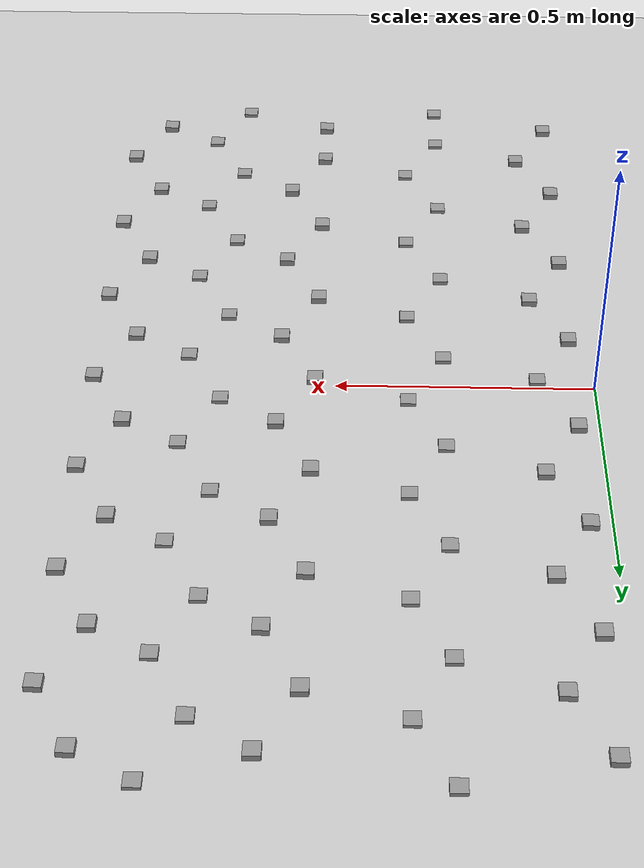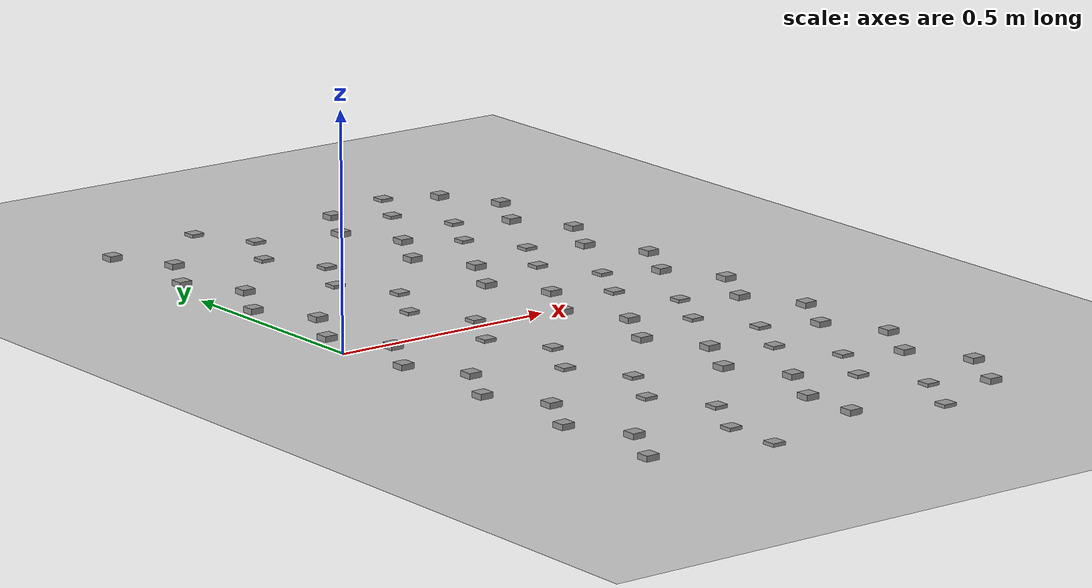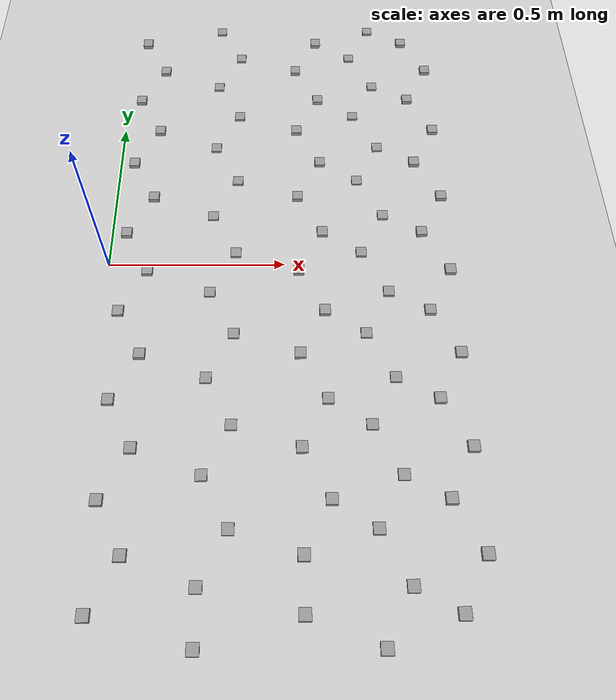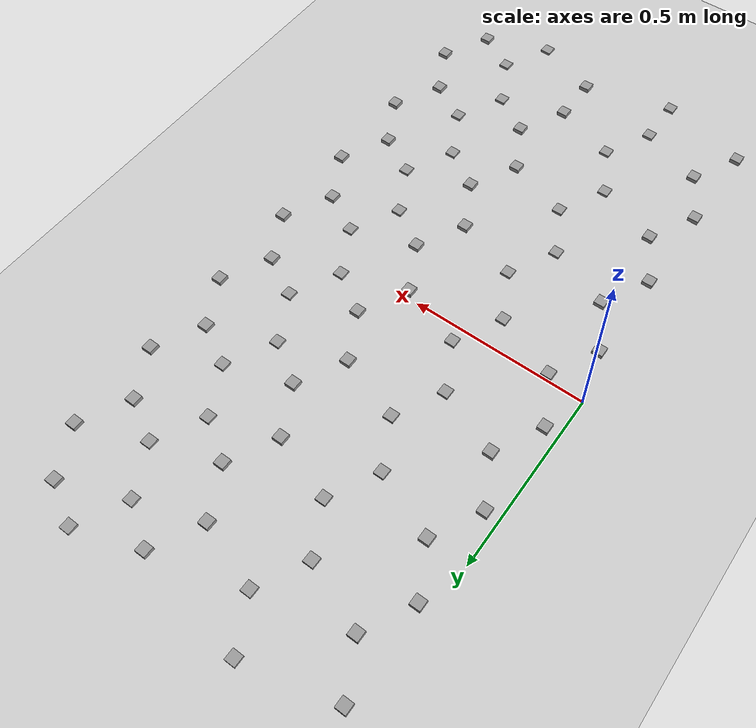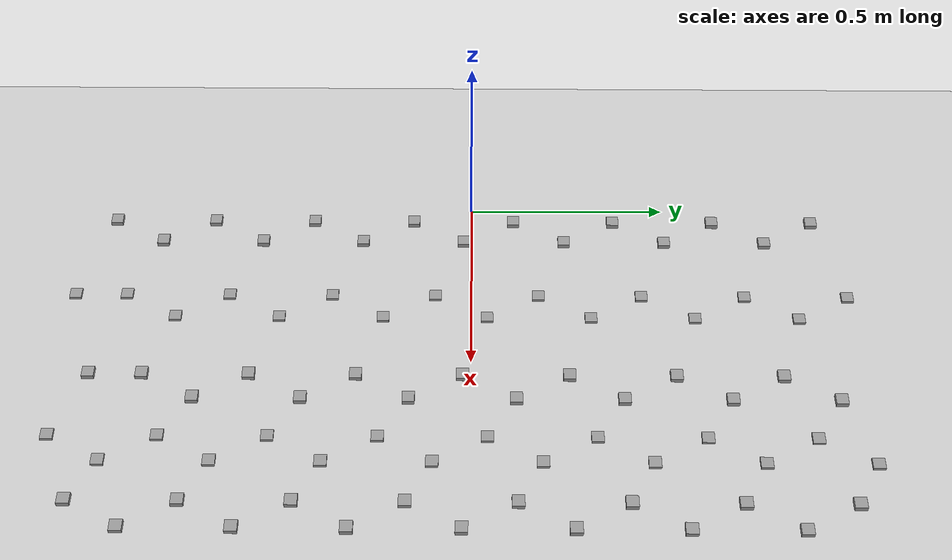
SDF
<sdf version="1.5">
 <world name="default">
  <model name="unit_box_78">
   <pose>0.0400000000000001 -0.93 0 0 0 0</pose>
   <link name="link">
    <inertial>
     <mass>1</mass>
     <inertia><ixx>0</ixx><ixy>0</ixy><ixz>0</ixz><iyy>0</iyy><iyz>0</iyz><izz>0</izz></inertia>
    </inertial>
    <collision name="collision"><geometry><box><size>0.03 0.03 0.02</size></box></geometry></collision>
    <visual name="visual">
     <geometry><box><size>0.03 0.03 0.02</size></box></geometry>
     <material>
      <script><name>Gazebo/Grey</name><uri>file://media/materials/scripts/gazebo.material</uri></script>
     </material>
    </visual>
   </link>
  </model>
  <model name="unit_box_79">
   <pose>0.11 -0.8 0 0 0 0</pose>
   <link name="link">
    <inertial>
     <mass>1</mass>
     <inertia><ixx>0</ixx><ixy>0</ixy><ixz>0</ixz><iyy>0</iyy><iyz>0</iyz><izz>0</izz></inertia>
    </inertial>
    <collision name="collision"><geometry><box><size>0.03 0.03 0.02</size></box></geometry></collision>
    <visual name="visual">
     <geometry><box><size>0.03 0.03 0.02</size></box></geometry>
     <material>
      <script><name>Gazebo/Grey</name><uri>file://media/materials/scripts/gazebo.material</uri></script>
     </material>
    </visual>
   </link>
  </model>
  <model name="unit_box_80">
   <pose>0.0400000000000001 -0.67 0 0 0 0</pose>
   <link name="link">
    <inertial>
     <mass>1</mass>
     <inertia><ixx>0</ixx><ixy>0</ixy><ixz>0</ixz><iyy>0</iyy><iyz>0</iyz><izz>0</izz></inertia>
    </inertial>
    <collision name="collision"><geometry><box><size>0.03 0.03 0.02</size></box></geometry></collision>
    <visual name="visual">
     <geometry><box><size>0.03 0.03 0.02</size></box></geometry>
     <material>
      <script><name>Gazebo/Grey</name><uri>file://media/materials/scripts/gazebo.material</uri></script>
     </material>
    </visual>
   </link>
  </model>
  <model name="unit_box_81">
   <pose>0.11 -0.54 0 0 0 0</pose>
   <link name="link">
    <inertial>
     <mass>1</mass>
     <inertia><ixx>0</ixx><ixy>0</ixy><ixz>0</ixz><iyy>0</iyy><iyz>0</iyz><izz>0</izz></inertia>
    </inertial>
    <collision name="collision"><geometry><box><size>0.03 0.03 0.02</size></box></geometry></collision>
    <visual name="visual">
     <geometry><box><size>0.03 0.03 0.02</size></box></geometry>
     <material>
      <script><name>Gazebo/Grey</name><uri>file://media/materials/scripts/gazebo.material</uri></script>
     </material>
    </visual>
   </link>
  </model>
  <model name="unit_box_82">
   <pose>0.0400000000000001 -0.41 0 0 0 0</pose>
   <link name="link">
    <inertial>
     <mass>1</mass>
     <inertia><ixx>0</ixx><ixy>0</ixy><ixz>0</ixz><iyy>0</iyy><iyz>0</iyz><izz>0</izz></inertia>
    </inertial>
    <collision name="collision"><geometry><box><size>0.03 0.03 0.02</size></box></geometry></collision>
    <visual name="visual">
     <geometry><box><size>0.03 0.03 0.02</size></box></geometry>
     <material>
      <script><name>Gazebo/Grey</name><uri>file://media/materials/scripts/gazebo.material</uri></script>
     </material>
    </visual>
   </link>
  </model>
  <model name="unit_box_83">
   <pose>0.11 -0.28 0 0 0 0</pose>
   <link name="link">
    <inertial>
     <mass>1</mass>
     <inertia><ixx>0</ixx><ixy>0</ixy><ixz>0</ixz><iyy>0</iyy><iyz>0</iyz><izz>0</izz></inertia>
    </inertial>
    <collision name="collision"><geometry><box><size>0.03 0.03 0.02</size></box></geometry></collision>
    <visual name="visual">
     <geometry><box><size>0.03 0.03 0.02</size></box></geometry>
     <material>
      <script><name>Gazebo/Grey</name><uri>file://media/materials/scripts/gazebo.material</uri></script>
     </material>
    </visual>
   </link>
  </model>
  <model name="unit_box_84">
   <pose>0.0400000000000001 -0.15 0 0 0 0</pose>
   <link name="link">
    <inertial>
     <mass>1</mass>
     <inertia><ixx>0</ixx><ixy>0</ixy><ixz>0</ixz><iyy>0</iyy><iyz>0</iyz><izz>0</izz></inertia>
    </inertial>
    <collision name="collision"><geometry><box><size>0.03 0.03 0.02</size></box></geometry></collision>
    <visual name="visual">
     <geometry><box><size>0.03 0.03 0.02</size></box></geometry>
     <material>
      <script><name>Gazebo/Grey</name><uri>file://media/materials/scripts/gazebo.material</uri></script>
     </material>
    </visual>
   </link>
  </model>
  <model name="unit_box_85">
   <pose>0.11 -0.02 0 0 0 0</pose>
   <link name="link">
    <inertial>
     <mass>1</mass>
     <inertia><ixx>0</ixx><ixy>0</ixy><ixz>0</ixz><iyy>0</iyy><iyz>0</iyz><izz>0</izz></inertia>
    </inertial>
    <collision name="collision"><geometry><box><size>0.03 0.03 0.02</size></box></geometry></collision>
    <visual name="visual">
     <geometry><box><size>0.03 0.03 0.02</size></box></geometry>
     <material>
      <script><name>Gazebo/Grey</name><uri>file://media/materials/scripts/gazebo.material</uri></script>
     </material>
    </visual>
   </link>
  </model>
  <model name="unit_box_86">
   <pose>0.0400000000000001 0.11 0 0 0 0</pose>
   <link name="link">
    <inertial>
     <mass>1</mass>
     <inertia><ixx>0</ixx><ixy>0</ixy><ixz>0</ixz><iyy>0</iyy><iyz>0</iyz><izz>0</izz></inertia>
    </inertial>
    <collision name="collision"><geometry><box><size>0.03 0.03 0.02</size></box></geometry></collision>
    <visual name="visual">
     <geometry><box><size>0.03 0.03 0.02</size></box></geometry>
     <material>
      <script><name>Gazebo/Grey</name><uri>file://media/materials/scripts/gazebo.material</uri></script>
     </material>
    </visual>
   </link>
  </model>
  <model name="unit_box_87">
   <pose>0.11 0.24 0 0 0 0</pose>
   <link name="link">
    <inertial>
     <mass>1</mass>
     <inertia><ixx>0</ixx><ixy>0</ixy><ixz>0</ixz><iyy>0</iyy><iyz>0</iyz><izz>0</izz></inertia>
    </inertial>
    <collision name="collision"><geometry><box><size>0.03 0.03 0.02</size></box></geometry></collision>
    <visual name="visual">
     <geometry><box><size>0.03 0.03 0.02</size></box></geometry>
     <material>
      <script><name>Gazebo/Grey</name><uri>file://media/materials/scripts/gazebo.material</uri></script>
     </material>
    </visual>
   </link>
  </model>
  <model name="unit_box_88">
   <pose>0.0400000000000001 0.37 0 0 0 0</pose>
   <link name="link">
    <inertial>
     <mass>1</mass>
     <inertia><ixx>0</ixx><ixy>0</ixy><ixz>0</ixz><iyy>0</iyy><iyz>0</iyz><izz>0</izz></inertia>
    </inertial>
    <collision name="collision"><geometry><box><size>0.03 0.03 0.02</size></box></geometry></collision>
    <visual name="visual">
     <geometry><box><size>0.03 0.03 0.02</size></box></geometry>
     <material>
      <script><name>Gazebo/Grey</name><uri>file://media/materials/scripts/gazebo.material</uri></script>
     </material>
    </visual>
   </link>
  </model>
  <model name="unit_box_89">
   <pose>0.11 0.5 0 0 0 0</pose>
   <link name="link">
    <inertial>
     <mass>1</mass>
     <inertia><ixx>0</ixx><ixy>0</ixy><ixz>0</ixz><iyy>0</iyy><iyz>0</iyz><izz>0</izz></inertia>
    </inertial>
    <collision name="collision"><geometry><box><size>0.03 0.03 0.02</size></box></geometry></collision>
    <visual name="visual">
     <geometry><box><size>0.03 0.03 0.02</size></box></geometry>
     <material>
      <script><name>Gazebo/Grey</name><uri>file://media/materials/scripts/gazebo.material</uri></script>
     </material>
    </visual>
   </link>
  </model>
  <model name="unit_box_90">
   <pose>0.0400000000000001 0.63 0 0 0 0</pose>
   <link name="link">
    <inertial>
     <mass>1</mass>
     <inertia><ixx>0</ixx><ixy>0</ixy><ixz>0</ixz><iyy>0</iyy><iyz>0</iyz><izz>0</izz></inertia>
    </inertial>
    <collision name="collision"><geometry><box><size>0.03 0.03 0.02</size></box></geometry></collision>
    <visual name="visual">
     <geometry><box><size>0.03 0.03 0.02</size></box></geometry>
     <material>
      <script><name>Gazebo/Grey</name><uri>file://media/materials/scripts/gazebo.material</uri></script>
     </material>
    </visual>
   </link>
  </model>
  <model name="unit_box_91">
   <pose>0.11 0.76 0 0 0 0</pose>
   <link name="link">
    <inertial>
     <mass>1</mass>
     <inertia><ixx>0</ixx><ixy>0</ixy><ixz>0</ixz><iyy>0</iyy><iyz>0</iyz><izz>0</izz></inertia>
    </inertial>
    <collision name="collision"><geometry><box><size>0.03 0.03 0.02</size></box></geometry></collision>
    <visual name="visual">
     <geometry><box><size>0.03 0.03 0.02</size></box></geometry>
     <material>
      <script><name>Gazebo/Grey</name><uri>file://media/materials/scripts/gazebo.material</uri></script>
     </material>
    </visual>
   </link>
  </model>
  <model name="unit_box_92">
   <pose>0.0400000000000001 0.89 0 0 0 0</pose>
   <link name="link">
    <inertial>
     <mass>1</mass>
     <inertia><ixx>0</ixx><ixy>0</ixy><ixz>0</ixz><iyy>0</iyy><iyz>0</iyz><izz>0</izz></inertia>
    </inertial>
    <collision name="collision"><geometry><box><size>0.03 0.03 0.02</size></box></geometry></collision>
    <visual name="visual">
     <geometry><box><size>0.03 0.03 0.02</size></box></geometry>
     <material>
      <script><name>Gazebo/Grey</name><uri>file://media/materials/scripts/gazebo.material</uri></script>
     </material>
    </visual>
   </link>
  </model>
  <model name="unit_box_93">
   <pose>0.29 -1 0 0 0 0</pose>
   <link name="link">
    <inertial>
     <mass>1</mass>
     <inertia><ixx>0</ixx><ixy>0</ixy><ixz>0</ixz><iyy>0</iyy><iyz>0</iyz><izz>0</izz></inertia>
    </inertial>
    <collision name="collision"><geometry><box><size>0.03 0.03 0.01</size></box></geometry></collision>
    <visual name="visual">
     <geometry><box><size>0.03 0.03 0.01</size></box></geometry>
     <material>
      <script><name>Gazebo/Grey</name><uri>file://media/materials/scripts/gazebo.material</uri></script>
     </material>
    </visual>
   </link>
  </model>
  <model name="unit_box_94">
   <pose>0.29 -0.87 0 0 0 0</pose>
   <link name="link">
    <inertial>
     <mass>1</mass>
     <inertia><ixx>0</ixx><ixy>0</ixy><ixz>0</ixz><iyy>0</iyy><iyz>0</iyz><izz>0</izz></inertia>
    </inertial>
    <collision name="collision"><geometry><box><size>0.03 0.03 0.01</size></box></geometry></collision>
    <visual name="visual">
     <geometry><box><size>0.03 0.03 0.01</size></box></geometry>
     <material>
      <script><name>Gazebo/Grey</name><uri>file://media/materials/scripts/gazebo.material</uri></script>
     </material>
    </visual>
   </link>
  </model>
  <model name="unit_box_95">
   <pose>0.36 -0.74 0 0 0 0</pose>
   <link name="link">
    <inertial>
     <mass>1</mass>
     <inertia><ixx>0</ixx><ixy>0</ixy><ixz>0</ixz><iyy>0</iyy><iyz>0</iyz><izz>0</izz></inertia>
    </inertial>
    <collision name="collision"><geometry><box><size>0.03 0.03 0.01</size></box></geometry></collision>
    <visual name="visual">
     <geometry><box><size>0.03 0.03 0.01</size></box></geometry>
     <material>
      <script><name>Gazebo/Grey</name><uri>file://media/materials/scripts/gazebo.material</uri></script>
     </material>
    </visual>
   </link>
  </model>
  <model name="unit_box_96">
   <pose>0.29 -0.61 0 0 0 0</pose>
   <link name="link">
    <inertial>
     <mass>1</mass>
     <inertia><ixx>0</ixx><ixy>0</ixy><ixz>0</ixz><iyy>0</iyy><iyz>0</iyz><izz>0</izz></inertia>
    </inertial>
    <collision name="collision"><geometry><box><size>0.03 0.03 0.01</size></box></geometry></collision>
    <visual name="visual">
     <geometry><box><size>0.03 0.03 0.01</size></box></geometry>
     <material>
      <script><name>Gazebo/Grey</name><uri>file://media/materials/scripts/gazebo.material</uri></script>
     </material>
    </visual>
   </link>
  </model>
  <model name="unit_box_97">
   <pose>0.36 -0.48 0 0 0 0</pose>
   <link name="link">
    <inertial>
     <mass>1</mass>
     <inertia><ixx>0</ixx><ixy>0</ixy><ixz>0</ixz><iyy>0</iyy><iyz>0</iyz><izz>0</izz></inertia>
    </inertial>
    <collision name="collision"><geometry><box><size>0.03 0.03 0.01</size></box></geometry></collision>
    <visual name="visual">
     <geometry><box><size>0.03 0.03 0.01</size></box></geometry>
     <material>
      <script><name>Gazebo/Grey</name><uri>file://media/materials/scripts/gazebo.material</uri></script>
     </material>
    </visual>
   </link>
  </model>
  <model name="unit_box_98">
   <pose>0.29 -0.35 0 0 0 0</pose>
   <link name="link">
    <inertial>
     <mass>1</mass>
     <inertia><ixx>0</ixx><ixy>0</ixy><ixz>0</ixz><iyy>0</iyy><iyz>0</iyz><izz>0</izz></inertia>
    </inertial>
    <collision name="collision"><geometry><box><size>0.03 0.03 0.01</size></box></geometry></collision>
    <visual name="visual">
     <geometry><box><size>0.03 0.03 0.01</size></box></geometry>
     <material>
      <script><name>Gazebo/Grey</name><uri>file://media/materials/scripts/gazebo.material</uri></script>
     </material>
    </visual>
   </link>
  </model>
  <model name="unit_box_99">
   <pose>0.36 -0.22 0 0 0 0</pose>
   <link name="link">
    <inertial>
     <mass>1</mass>
     <inertia><ixx>0</ixx><ixy>0</ixy><ixz>0</ixz><iyy>0</iyy><iyz>0</iyz><izz>0</izz></inertia>
    </inertial>
    <collision name="collision"><geometry><box><size>0.03 0.03 0.01</size></box></geometry></collision>
    <visual name="visual">
     <geometry><box><size>0.03 0.03 0.01</size></box></geometry>
     <material>
      <script><name>Gazebo/Grey</name><uri>file://media/materials/scripts/gazebo.material</uri></script>
     </material>
    </visual>
   </link>
  </model>
  <model name="unit_box_100">
   <pose>0.29 -0.0899999999999999 0 0 0 0</pose>
   <link name="link">
    <inertial>
     <mass>1</mass>
     <inertia><ixx>0</ixx><ixy>0</ixy><ixz>0</ixz><iyy>0</iyy><iyz>0</iyz><izz>0</izz></inertia>
    </inertial>
    <collision name="collision"><geometry><box><size>0.03 0.03 0.01</size></box></geometry></collision>
    <visual name="visual">
     <geometry><box><size>0.03 0.03 0.01</size></box></geometry>
     <material>
      <script><name>Gazebo/Grey</name><uri>file://media/materials/scripts/gazebo.material</uri></script>
     </material>
    </visual>
   </link>
  </model>
  <model name="unit_box_101">
   <pose>0.36 0.0400000000000001 0 0 0 0</pose>
   <link name="link">
    <inertial>
     <mass>1</mass>
     <inertia><ixx>0</ixx><ixy>0</ixy><ixz>0</ixz><iyy>0</iyy><iyz>0</iyz><izz>0</izz></inertia>
    </inertial>
    <collision name="collision"><geometry><box><size>0.03 0.03 0.01</size></box></geometry></collision>
    <visual name="visual">
     <geometry><box><size>0.03 0.03 0.01</size></box></geometry>
     <material>
      <script><name>Gazebo/Grey</name><uri>file://media/materials/scripts/gazebo.material</uri></script>
     </material>
    </visual>
   </link>
  </model>
  <model name="unit_box_102">
   <pose>0.29 0.17 0 0 0 0</pose>
   <link name="link">
    <inertial>
     <mass>1</mass>
     <inertia><ixx>0</ixx><ixy>0</ixy><ixz>0</ixz><iyy>0</iyy><iyz>0</iyz><izz>0</izz></inertia>
    </inertial>
    <collision name="collision"><geometry><box><size>0.03 0.03 0.01</size></box></geometry></collision>
    <visual name="visual">
     <geometry><box><size>0.03 0.03 0.01</size></box></geometry>
     <material>
      <script><name>Gazebo/Grey</name><uri>file://media/materials/scripts/gazebo.material</uri></script>
     </material>
    </visual>
   </link>
  </model>
  <model name="unit_box_103">
   <pose>0.36 0.3 0 0 0 0</pose>
   <link name="link">
    <inertial>
     <mass>1</mass>
     <inertia><ixx>0</ixx><ixy>0</ixy><ixz>0</ixz><iyy>0</iyy><iyz>0</iyz><izz>0</izz></inertia>
    </inertial>
    <collision name="collision"><geometry><box><size>0.03 0.03 0.01</size></box></geometry></collision>
    <visual name="visual">
     <geometry><box><size>0.03 0.03 0.01</size></box></geometry>
     <material>
      <script><name>Gazebo/Grey</name><uri>file://media/materials/scripts/gazebo.material</uri></script>
     </material>
    </visual>
   </link>
  </model>
  <model name="unit_box_104">
   <pose>0.29 0.43 0 0 0 0</pose>
   <link name="link">
    <inertial>
     <mass>1</mass>
     <inertia><ixx>0</ixx><ixy>0</ixy><ixz>0</ixz><iyy>0</iyy><iyz>0</iyz><izz>0</izz></inertia>
    </inertial>
    <collision name="collision"><geometry><box><size>0.03 0.03 0.01</size></box></geometry></collision>
    <visual name="visual">
     <geometry><box><size>0.03 0.03 0.01</size></box></geometry>
     <material>
      <script><name>Gazebo/Grey</name><uri>file://media/materials/scripts/gazebo.material</uri></script>
     </material>
    </visual>
   </link>
  </model>
  <model name="unit_box_105">
   <pose>0.36 0.56 0 0 0 0</pose>
   <link name="link">
    <inertial>
     <mass>1</mass>
     <inertia><ixx>0</ixx><ixy>0</ixy><ixz>0</ixz><iyy>0</iyy><iyz>0</iyz><izz>0</izz></inertia>
    </inertial>
    <collision name="collision"><geometry><box><size>0.03 0.03 0.01</size></box></geometry></collision>
    <visual name="visual">
     <geometry><box><size>0.03 0.03 0.01</size></box></geometry>
     <material>
      <script><name>Gazebo/Grey</name><uri>file://media/materials/scripts/gazebo.material</uri></script>
     </material>
    </visual>
   </link>
  </model>
  <model name="unit_box_106">
   <pose>0.29 0.69 0 0 0 0</pose>
   <link name="link">
    <inertial>
     <mass>1</mass>
     <inertia><ixx>0</ixx><ixy>0</ixy><ixz>0</ixz><iyy>0</iyy><iyz>0</iyz><izz>0</izz></inertia>
    </inertial>
    <collision name="collision"><geometry><box><size>0.03 0.03 0.01</size></box></geometry></collision>
    <visual name="visual">
     <geometry><box><size>0.03 0.03 0.01</size></box></geometry>
     <material>
      <script><name>Gazebo/Grey</name><uri>file://media/materials/scripts/gazebo.material</uri></script>
     </material>
    </visual>
   </link>
  </model>
  <model name="unit_box_107">
   <pose>0.36 0.82 0 0 0 0</pose>
   <link name="link">
    <inertial>
     <mass>1</mass>
     <inertia><ixx>0</ixx><ixy>0</ixy><ixz>0</ixz><iyy>0</iyy><iyz>0</iyz><izz>0</izz></inertia>
    </inertial>
    <collision name="collision"><geometry><box><size>0.03 0.03 0.01</size></box></geometry></collision>
    <visual name="visual">
     <geometry><box><size>0.03 0.03 0.01</size></box></geometry>
     <material>
      <script><name>Gazebo/Grey</name><uri>file://media/materials/scripts/gazebo.material</uri></script>
     </material>
    </visual>
   </link>
  </model>
  <model name="unit_box_108">
   <pose>0.29 0.95 0 0 0 0</pose>
   <link name="link">
    <inertial>
     <mass>1</mass>
     <inertia><ixx>0</ixx><ixy>0</ixy><ixz>0</ixz><iyy>0</iyy><iyz>0</iyz><izz>0</izz></inertia>
    </inertial>
    <collision name="collision"><geometry><box><size>0.03 0.03 0.01</size></box></geometry></collision>
    <visual name="visual">
     <geometry><box><size>0.03 0.03 0.01</size></box></geometry>
     <material>
      <script><name>Gazebo/Grey</name><uri>file://media/materials/scripts/gazebo.material</uri></script>
     </material>
    </visual>
   </link>
  </model>
  <model name="unit_box_109">
   <pose>0.54 -0.93 0 0 0 0</pose>
   <link name="link">
    <inertial>
     <mass>1</mass>
     <inertia><ixx>0</ixx><ixy>0</ixy><ixz>0</ixz><iyy>0</iyy><iyz>0</iyz><izz>0</izz></inertia>
    </inertial>
    <collision name="collision"><geometry><box><size>0.03 0.03 0.02</size></box></geometry></collision>
    <visual name="visual">
     <geometry><box><size>0.03 0.03 0.02</size></box></geometry>
     <material>
      <script><name>Gazebo/Grey</name><uri>file://media/materials/scripts/gazebo.material</uri></script>
     </material>
    </visual>
   </link>
  </model>
  <model name="unit_box_110">
   <pose>0.54 -0.8 0 0 0 0</pose>
   <link name="link">
    <inertial>
     <mass>1</mass>
     <inertia><ixx>0</ixx><ixy>0</ixy><ixz>0</ixz><iyy>0</iyy><iyz>0</iyz><izz>0</izz></inertia>
    </inertial>
    <collision name="collision"><geometry><box><size>0.03 0.03 0.02</size></box></geometry></collision>
    <visual name="visual">
     <geometry><box><size>0.03 0.03 0.02</size></box></geometry>
     <material>
      <script><name>Gazebo/Grey</name><uri>file://media/materials/scripts/gazebo.material</uri></script>
     </material>
    </visual>
   </link>
  </model>
  <model name="unit_box_111">
   <pose>0.61 -0.67 0 0 0 0</pose>
   <link name="link">
    <inertial>
     <mass>1</mass>
     <inertia><ixx>0</ixx><ixy>0</ixy><ixz>0</ixz><iyy>0</iyy><iyz>0</iyz><izz>0</izz></inertia>
    </inertial>
    <collision name="collision"><geometry><box><size>0.03 0.03 0.02</size></box></geometry></collision>
    <visual name="visual">
     <geometry><box><size>0.03 0.03 0.02</size></box></geometry>
     <material>
      <script><name>Gazebo/Grey</name><uri>file://media/materials/scripts/gazebo.material</uri></script>
     </material>
    </visual>
   </link>
  </model>
  <model name="unit_box_112">
   <pose>0.54 -0.54 0 0 0 0</pose>
   <link name="link">
    <inertial>
     <mass>1</mass>
     <inertia><ixx>0</ixx><ixy>0</ixy><ixz>0</ixz><iyy>0</iyy><iyz>0</iyz><izz>0</izz></inertia>
    </inertial>
    <collision name="collision"><geometry><box><size>0.03 0.03 0.02</size></box></geometry></collision>
    <visual name="visual">
     <geometry><box><size>0.03 0.03 0.02</size></box></geometry>
     <material>
      <script><name>Gazebo/Grey</name><uri>file://media/materials/scripts/gazebo.material</uri></script>
     </material>
    </visual>
   </link>
  </model>
  <model name="unit_box_113">
   <pose>0.61 -0.41 0 0 0 0</pose>
   <link name="link">
    <inertial>
     <mass>1</mass>
     <inertia><ixx>0</ixx><ixy>0</ixy><ixz>0</ixz><iyy>0</iyy><iyz>0</iyz><izz>0</izz></inertia>
    </inertial>
    <collision name="collision"><geometry><box><size>0.03 0.03 0.02</size></box></geometry></collision>
    <visual name="visual">
     <geometry><box><size>0.03 0.03 0.02</size></box></geometry>
     <material>
      <script><name>Gazebo/Grey</name><uri>file://media/materials/scripts/gazebo.material</uri></script>
     </material>
    </visual>
   </link>
  </model>
  <model name="unit_box_114">
   <pose>0.54 -0.28 0 0 0 0</pose>
   <link name="link">
    <inertial>
     <mass>1</mass>
     <inertia><ixx>0</ixx><ixy>0</ixy><ixz>0</ixz><iyy>0</iyy><iyz>0</iyz><izz>0</izz></inertia>
    </inertial>
    <collision name="collision"><geometry><box><size>0.03 0.03 0.02</size></box></geometry></collision>
    <visual name="visual">
     <geometry><box><size>0.03 0.03 0.02</size></box></geometry>
     <material>
      <script><name>Gazebo/Grey</name><uri>file://media/materials/scripts/gazebo.material</uri></script>
     </material>
    </visual>
   </link>
  </model>
  <model name="unit_box_115">
   <pose>0.61 -0.15 0 0 0 0</pose>
   <link name="link">
    <inertial>
     <mass>1</mass>
     <inertia><ixx>0</ixx><ixy>0</ixy><ixz>0</ixz><iyy>0</iyy><iyz>0</iyz><izz>0</izz></inertia>
    </inertial>
    <collision name="collision"><geometry><box><size>0.03 0.03 0.02</size></box></geometry></collision>
    <visual name="visual">
     <geometry><box><size>0.03 0.03 0.02</size></box></geometry>
     <material>
      <script><name>Gazebo/Grey</name><uri>file://media/materials/scripts/gazebo.material</uri></script>
     </material>
    </visual>
   </link>
  </model>
  <model name="unit_box_116">
   <pose>0.54 -0.02 0 0 0 0</pose>
   <link name="link">
    <inertial>
     <mass>1</mass>
     <inertia><ixx>0</ixx><ixy>0</ixy><ixz>0</ixz><iyy>0</iyy><iyz>0</iyz><izz>0</izz></inertia>
    </inertial>
    <collision name="collision"><geometry><box><size>0.03 0.03 0.02</size></box></geometry></collision>
    <visual name="visual">
     <geometry><box><size>0.03 0.03 0.02</size></box></geometry>
     <material>
      <script><name>Gazebo/Grey</name><uri>file://media/materials/scripts/gazebo.material</uri></script>
     </material>
    </visual>
   </link>
  </model>
  <model name="unit_box_117">
   <pose>0.61 0.11 0 0 0 0</pose>
   <link name="link">
    <inertial>
     <mass>1</mass>
     <inertia><ixx>0</ixx><ixy>0</ixy><ixz>0</ixz><iyy>0</iyy><iyz>0</iyz><izz>0</izz></inertia>
    </inertial>
    <collision name="collision"><geometry><box><size>0.03 0.03 0.02</size></box></geometry></collision>
    <visual name="visual">
     <geometry><box><size>0.03 0.03 0.02</size></box></geometry>
     <material>
      <script><name>Gazebo/Grey</name><uri>file://media/materials/scripts/gazebo.material</uri></script>
     </material>
    </visual>
   </link>
  </model>
  <model name="unit_box_118">
   <pose>0.54 0.24 0 0 0 0</pose>
   <link name="link">
    <inertial>
     <mass>1</mass>
     <inertia><ixx>0</ixx><ixy>0</ixy><ixz>0</ixz><iyy>0</iyy><iyz>0</iyz><izz>0</izz></inertia>
    </inertial>
    <collision name="collision"><geometry><box><size>0.03 0.03 0.02</size></box></geometry></collision>
    <visual name="visual">
     <geometry><box><size>0.03 0.03 0.02</size></box></geometry>
     <material>
      <script><name>Gazebo/Grey</name><uri>file://media/materials/scripts/gazebo.material</uri></script>
     </material>
    </visual>
   </link>
  </model>
  <model name="unit_box_119">
   <pose>0.61 0.37 0 0 0 0</pose>
   <link name="link">
    <inertial>
     <mass>1</mass>
     <inertia><ixx>0</ixx><ixy>0</ixy><ixz>0</ixz><iyy>0</iyy><iyz>0</iyz><izz>0</izz></inertia>
    </inertial>
    <collision name="collision"><geometry><box><size>0.03 0.03 0.02</size></box></geometry></collision>
    <visual name="visual">
     <geometry><box><size>0.03 0.03 0.02</size></box></geometry>
     <material>
      <script><name>Gazebo/Grey</name><uri>file://media/materials/scripts/gazebo.material</uri></script>
     </material>
    </visual>
   </link>
  </model>
  <model name="unit_box_120">
   <pose>0.54 0.5 0 0 0 0</pose>
   <link name="link">
    <inertial>
     <mass>1</mass>
     <inertia><ixx>0</ixx><ixy>0</ixy><ixz>0</ixz><iyy>0</iyy><iyz>0</iyz><izz>0</izz></inertia>
    </inertial>
    <collision name="collision"><geometry><box><size>0.03 0.03 0.02</size></box></geometry></collision>
    <visual name="visual">
     <geometry><box><size>0.03 0.03 0.02</size></box></geometry>
     <material>
      <script><name>Gazebo/Grey</name><uri>file://media/materials/scripts/gazebo.material</uri></script>
     </material>
    </visual>
   </link>
  </model>
  <model name="unit_box_121">
   <pose>0.61 0.63 0 0 0 0</pose>
   <link name="link">
    <inertial>
     <mass>1</mass>
     <inertia><ixx>0</ixx><ixy>0</ixy><ixz>0</ixz><iyy>0</iyy><iyz>0</iyz><izz>0</izz></inertia>
    </inertial>
    <collision name="collision"><geometry><box><size>0.03 0.03 0.02</size></box></geometry></collision>
    <visual name="visual">
     <geometry><box><size>0.03 0.03 0.02</size></box></geometry>
     <material>
      <script><name>Gazebo/Grey</name><uri>file://media/materials/scripts/gazebo.material</uri></script>
     </material>
    </visual>
   </link>
  </model>
  <model name="unit_box_122">
   <pose>0.54 0.76 0 0 0 0</pose>
   <link name="link">
    <inertial>
     <mass>1</mass>
     <inertia><ixx>0</ixx><ixy>0</ixy><ixz>0</ixz><iyy>0</iyy><iyz>0</iyz><izz>0</izz></inertia>
    </inertial>
    <collision name="collision"><geometry><box><size>0.03 0.03 0.02</size></box></geometry></collision>
    <visual name="visual">
     <geometry><box><size>0.03 0.03 0.02</size></box></geometry>
     <material>
      <script><name>Gazebo/Grey</name><uri>file://media/materials/scripts/gazebo.material</uri></script>
     </material>
    </visual>
   </link>
  </model>
  <model name="unit_box_123">
   <pose>0.61 0.89 0 0 0 0</pose>
   <link name="link">
    <inertial>
     <mass>1</mass>
     <inertia><ixx>0</ixx><ixy>0</ixy><ixz>0</ixz><iyy>0</iyy><iyz>0</iyz><izz>0</izz></inertia>
    </inertial>
    <collision name="collision"><geometry><box><size>0.03 0.03 0.02</size></box></geometry></collision>
    <visual name="visual">
     <geometry><box><size>0.03 0.03 0.02</size></box></geometry>
     <material>
      <script><name>Gazebo/Grey</name><uri>file://media/materials/scripts/gazebo.material</uri></script>
     </material>
    </visual>
   </link>
  </model>
  <model name="unit_box_124">
   <pose>0.72 -1 0 0 0 0</pose>
   <link name="link">
    <inertial>
     <mass>1</mass>
     <inertia><ixx>0</ixx><ixy>0</ixy><ixz>0</ixz><iyy>0</iyy><iyz>0</iyz><izz>0</izz></inertia>
    </inertial>
    <collision name="collision"><geometry><box><size>0.03 0.03 0.01</size></box></geometry></collision>
    <visual name="visual">
     <geometry><box><size>0.03 0.03 0.01</size></box></geometry>
     <material>
      <script><name>Gazebo/Grey</name><uri>file://media/materials/scripts/gazebo.material</uri></script>
     </material>
    </visual>
   </link>
  </model>
  <model name="unit_box_125">
   <pose>0.79 -0.87 0 0 0 0</pose>
   <link name="link">
    <inertial>
     <mass>1</mass>
     <inertia><ixx>0</ixx><ixy>0</ixy><ixz>0</ixz><iyy>0</iyy><iyz>0</iyz><izz>0</izz></inertia>
    </inertial>
    <collision name="collision"><geometry><box><size>0.03 0.03 0.01</size></box></geometry></collision>
    <visual name="visual">
     <geometry><box><size>0.03 0.03 0.01</size></box></geometry>
     <material>
      <script><name>Gazebo/Grey</name><uri>file://media/materials/scripts/gazebo.material</uri></script>
     </material>
    </visual>
   </link>
  </model>
  <model name="unit_box_126">
   <pose>0.72 -0.74 0 0 0 0</pose>
   <link name="link">
    <inertial>
     <mass>1</mass>
     <inertia><ixx>0</ixx><ixy>0</ixy><ixz>0</ixz><iyy>0</iyy><iyz>0</iyz><izz>0</izz></inertia>
    </inertial>
    <collision name="collision"><geometry><box><size>0.03 0.03 0.01</size></box></geometry></collision>
    <visual name="visual">
     <geometry><box><size>0.03 0.03 0.01</size></box></geometry>
     <material>
      <script><name>Gazebo/Grey</name><uri>file://media/materials/scripts/gazebo.material</uri></script>
     </material>
    </visual>
   </link>
  </model>
  <model name="unit_box_127">
   <pose>0.79 -0.61 0 0 0 0</pose>
   <link name="link">
    <inertial>
     <mass>1</mass>
     <inertia><ixx>0</ixx><ixy>0</ixy><ixz>0</ixz><iyy>0</iyy><iyz>0</iyz><izz>0</izz></inertia>
    </inertial>
    <collision name="collision"><geometry><box><size>0.03 0.03 0.01</size></box></geometry></collision>
    <visual name="visual">
     <geometry><box><size>0.03 0.03 0.01</size></box></geometry>
     <material>
      <script><name>Gazebo/Grey</name><uri>file://media/materials/scripts/gazebo.material</uri></script>
     </material>
    </visual>
   </link>
  </model>
  <model name="unit_box_128">
   <pose>0.72 -0.48 0 0 0 0</pose>
   <link name="link">
    <inertial>
     <mass>1</mass>
     <inertia><ixx>0</ixx><ixy>0</ixy><ixz>0</ixz><iyy>0</iyy><iyz>0</iyz><izz>0</izz></inertia>
    </inertial>
    <collision name="collision"><geometry><box><size>0.03 0.03 0.01</size></box></geometry></collision>
    <visual name="visual">
     <geometry><box><size>0.03 0.03 0.01</size></box></geometry>
     <material>
      <script><name>Gazebo/Grey</name><uri>file://media/materials/scripts/gazebo.material</uri></script>
     </material>
    </visual>
   </link>
  </model>
  <model name="unit_box_129">
   <pose>0.79 -0.35 0 0 0 0</pose>
   <link name="link">
    <inertial>
     <mass>1</mass>
     <inertia><ixx>0</ixx><ixy>0</ixy><ixz>0</ixz><iyy>0</iyy><iyz>0</iyz><izz>0</izz></inertia>
    </inertial>
    <collision name="collision"><geometry><box><size>0.03 0.03 0.01</size></box></geometry></collision>
    <visual name="visual">
     <geometry><box><size>0.03 0.03 0.01</size></box></geometry>
     <material>
      <script><name>Gazebo/Grey</name><uri>file://media/materials/scripts/gazebo.material</uri></script>
     </material>
    </visual>
   </link>
  </model>
  <model name="unit_box_130">
   <pose>0.72 -0.22 0 0 0 0</pose>
   <link name="link">
    <inertial>
     <mass>1</mass>
     <inertia><ixx>0</ixx><ixy>0</ixy><ixz>0</ixz><iyy>0</iyy><iyz>0</iyz><izz>0</izz></inertia>
    </inertial>
    <collision name="collision"><geometry><box><size>0.03 0.03 0.01</size></box></geometry></collision>
    <visual name="visual">
     <geometry><box><size>0.03 0.03 0.01</size></box></geometry>
     <material>
      <script><name>Gazebo/Grey</name><uri>file://media/materials/scripts/gazebo.material</uri></script>
     </material>
    </visual>
   </link>
  </model>
  <model name="unit_box_131">
   <pose>0.79 -0.0899999999999999 0 0 0 0</pose>
   <link name="link">
    <inertial>
     <mass>1</mass>
     <inertia><ixx>0</ixx><ixy>0</ixy><ixz>0</ixz><iyy>0</iyy><iyz>0</iyz><izz>0</izz></inertia>
    </inertial>
    <collision name="collision"><geometry><box><size>0.03 0.03 0.01</size></box></geometry></collision>
    <visual name="visual">
     <geometry><box><size>0.03 0.03 0.01</size></box></geometry>
     <material>
      <script><name>Gazebo/Grey</name><uri>file://media/materials/scripts/gazebo.material</uri></script>
     </material>
    </visual>
   </link>
  </model>
  <model name="unit_box_132">
   <pose>0.72 0.0400000000000001 0 0 0 0</pose>
   <link name="link">
    <inertial>
     <mass>1</mass>
     <inertia><ixx>0</ixx><ixy>0</ixy><ixz>0</ixz><iyy>0</iyy><iyz>0</iyz><izz>0</izz></inertia>
    </inertial>
    <collision name="collision"><geometry><box><size>0.03 0.03 0.01</size></box></geometry></collision>
    <visual name="visual">
     <geometry><box><size>0.03 0.03 0.01</size></box></geometry>
     <material>
      <script><name>Gazebo/Grey</name><uri>file://media/materials/scripts/gazebo.material</uri></script>
     </material>
    </visual>
   </link>
  </model>
  <model name="unit_box_133">
   <pose>0.79 0.17 0 0 0 0</pose>
   <link name="link">
    <inertial>
     <mass>1</mass>
     <inertia><ixx>0</ixx><ixy>0</ixy><ixz>0</ixz><iyy>0</iyy><iyz>0</iyz><izz>0</izz></inertia>
    </inertial>
    <collision name="collision"><geometry><box><size>0.03 0.03 0.01</size></box></geometry></collision>
    <visual name="visual">
     <geometry><box><size>0.03 0.03 0.01</size></box></geometry>
     <material>
      <script><name>Gazebo/Grey</name><uri>file://media/materials/scripts/gazebo.material</uri></script>
     </material>
    </visual>
   </link>
  </model>
  <model name="unit_box_134">
   <pose>0.72 0.3 0 0 0 0</pose>
   <link name="link">
    <inertial>
     <mass>1</mass>
     <inertia><ixx>0</ixx><ixy>0</ixy><ixz>0</ixz><iyy>0</iyy><iyz>0</iyz><izz>0</izz></inertia>
    </inertial>
    <collision name="collision"><geometry><box><size>0.03 0.03 0.01</size></box></geometry></collision>
    <visual name="visual">
     <geometry><box><size>0.03 0.03 0.01</size></box></geometry>
     <material>
      <script><name>Gazebo/Grey</name><uri>file://media/materials/scripts/gazebo.material</uri></script>
     </material>
    </visual>
   </link>
  </model>
  <model name="unit_box_135">
   <pose>0.79 0.43 0 0 0 0</pose>
   <link name="link">
    <inertial>
     <mass>1</mass>
     <inertia><ixx>0</ixx><ixy>0</ixy><ixz>0</ixz><iyy>0</iyy><iyz>0</iyz><izz>0</izz></inertia>
    </inertial>
    <collision name="collision"><geometry><box><size>0.03 0.03 0.01</size></box></geometry></collision>
    <visual name="visual">
     <geometry><box><size>0.03 0.03 0.01</size></box></geometry>
     <material>
      <script><name>Gazebo/Grey</name><uri>file://media/materials/scripts/gazebo.material</uri></script>
     </material>
    </visual>
   </link>
  </model>
  <model name="unit_box_136">
   <pose>0.72 0.56 0 0 0 0</pose>
   <link name="link">
    <inertial>
     <mass>1</mass>
     <inertia><ixx>0</ixx><ixy>0</ixy><ixz>0</ixz><iyy>0</iyy><iyz>0</iyz><izz>0</izz></inertia>
    </inertial>
    <collision name="collision"><geometry><box><size>0.03 0.03 0.01</size></box></geometry></collision>
    <visual name="visual">
     <geometry><box><size>0.03 0.03 0.01</size></box></geometry>
     <material>
      <script><name>Gazebo/Grey</name><uri>file://media/materials/scripts/gazebo.material</uri></script>
     </material>
    </visual>
   </link>
  </model>
  <model name="unit_box_137">
   <pose>0.79 0.69 0 0 0 0</pose>
   <link name="link">
    <inertial>
     <mass>1</mass>
     <inertia><ixx>0</ixx><ixy>0</ixy><ixz>0</ixz><iyy>0</iyy><iyz>0</iyz><izz>0</izz></inertia>
    </inertial>
    <collision name="collision"><geometry><box><size>0.03 0.03 0.01</size></box></geometry></collision>
    <visual name="visual">
     <geometry><box><size>0.03 0.03 0.01</size></box></geometry>
     <material>
      <script><name>Gazebo/Grey</name><uri>file://media/materials/scripts/gazebo.material</uri></script>
     </material>
    </visual>
   </link>
  </model>
  <model name="unit_box_138">
   <pose>0.72 0.82 0 0 0 0</pose>
   <link name="link">
    <inertial>
     <mass>1</mass>
     <inertia><ixx>0</ixx><ixy>0</ixy><ixz>0</ixz><iyy>0</iyy><iyz>0</iyz><izz>0</izz></inertia>
    </inertial>
    <collision name="collision"><geometry><box><size>0.03 0.03 0.01</size></box></geometry></collision>
    <visual name="visual">
     <geometry><box><size>0.03 0.03 0.01</size></box></geometry>
     <material>
      <script><name>Gazebo/Grey</name><uri>file://media/materials/scripts/gazebo.material</uri></script>
     </material>
    </visual>
   </link>
  </model>
  <model name="unit_box_139">
   <pose>0.79 0.95 0 0 0 0</pose>
   <link name="link">
    <inertial>
     <mass>1</mass>
     <inertia><ixx>0</ixx><ixy>0</ixy><ixz>0</ixz><iyy>0</iyy><iyz>0</iyz><izz>0</izz></inertia>
    </inertial>
    <collision name="collision"><geometry><box><size>0.03 0.03 0.01</size></box></geometry></collision>
    <visual name="visual">
     <geometry><box><size>0.03 0.03 0.01</size></box></geometry>
     <material>
      <script><name>Gazebo/Grey</name><uri>file://media/materials/scripts/gazebo.material</uri></script>
     </material>
    </visual>
   </link>
  </model>
  <model name="unit_box_140">
   <pose>0.9 -0.93 0 0 0 0</pose>
   <link name="link">
    <inertial>
     <mass>1</mass>
     <inertia><ixx>0</ixx><ixy>0</ixy><ixz>0</ixz><iyy>0</iyy><iyz>0</iyz><izz>0</izz></inertia>
    </inertial>
    <collision name="collision"><geometry><box><size>0.03 0.03 0.02</size></box></geometry></collision>
    <visual name="visual">
     <geometry><box><size>0.03 0.03 0.02</size></box></geometry>
     <material>
      <script><name>Gazebo/Grey</name><uri>file://media/materials/scripts/gazebo.material</uri></script>
     </material>
    </visual>
   </link>
  </model>
  <model name="unit_box_141">
   <pose>0.97 -0.8 0 0 0 0</pose>
   <link name="link">
    <inertial>
     <mass>1</mass>
     <inertia><ixx>0</ixx><ixy>0</ixy><ixz>0</ixz><iyy>0</iyy><iyz>0</iyz><izz>0</izz></inertia>
    </inertial>
    <collision name="collision"><geometry><box><size>0.03 0.03 0.02</size></box></geometry></collision>
    <visual name="visual">
     <geometry><box><size>0.03 0.03 0.02</size></box></geometry>
     <material>
      <script><name>Gazebo/Grey</name><uri>file://media/materials/scripts/gazebo.material</uri></script>
     </material>
    </visual>
   </link>
  </model>
  <model name="unit_box_142">
   <pose>0.9 -0.67 0 0 0 0</pose>
   <link name="link">
    <inertial>
     <mass>1</mass>
     <inertia><ixx>0</ixx><ixy>0</ixy><ixz>0</ixz><iyy>0</iyy><iyz>0</iyz><izz>0</izz></inertia>
    </inertial>
    <collision name="collision"><geometry><box><size>0.03 0.03 0.02</size></box></geometry></collision>
    <visual name="visual">
     <geometry><box><size>0.03 0.03 0.02</size></box></geometry>
     <material>
      <script><name>Gazebo/Grey</name><uri>file://media/materials/scripts/gazebo.material</uri></script>
     </material>
    </visual>
   </link>
  </model>
  <model name="unit_box_143">
   <pose>0.97 -0.54 0 0 0 0</pose>
   <link name="link">
    <inertial>
     <mass>1</mass>
     <inertia><ixx>0</ixx><ixy>0</ixy><ixz>0</ixz><iyy>0</iyy><iyz>0</iyz><izz>0</izz></inertia>
    </inertial>
    <collision name="collision"><geometry><box><size>0.03 0.03 0.02</size></box></geometry></collision>
    <visual name="visual">
     <geometry><box><size>0.03 0.03 0.02</size></box></geometry>
     <material>
      <script><name>Gazebo/Grey</name><uri>file://media/materials/scripts/gazebo.material</uri></script>
     </material>
    </visual>
   </link>
  </model>
  <model name="unit_box_144">
   <pose>0.9 -0.41 0 0 0 0</pose>
   <link name="link">
    <inertial>
     <mass>1</mass>
     <inertia><ixx>0</ixx><ixy>0</ixy><ixz>0</ixz><iyy>0</iyy><iyz>0</iyz><izz>0</izz></inertia>
    </inertial>
    <collision name="collision"><geometry><box><size>0.03 0.03 0.02</size></box></geometry></collision>
    <visual name="visual">
     <geometry><box><size>0.03 0.03 0.02</size></box></geometry>
     <material>
      <script><name>Gazebo/Grey</name><uri>file://media/materials/scripts/gazebo.material</uri></script>
     </material>
    </visual>
   </link>
  </model>
  <model name="unit_box_145">
   <pose>0.97 -0.28 0 0 0 0</pose>
   <link name="link">
    <inertial>
     <mass>1</mass>
     <inertia><ixx>0</ixx><ixy>0</ixy><ixz>0</ixz><iyy>0</iyy><iyz>0</iyz><izz>0</izz></inertia>
    </inertial>
    <collision name="collision"><geometry><box><size>0.03 0.03 0.02</size></box></geometry></collision>
    <visual name="visual">
     <geometry><box><size>0.03 0.03 0.02</size></box></geometry>
     <material>
      <script><name>Gazebo/Grey</name><uri>file://media/materials/scripts/gazebo.material</uri></script>
     </material>
    </visual>
   </link>
  </model>
  <model name="unit_box_146">
   <pose>0.9 -0.15 0 0 0 0</pose>
   <link name="link">
    <inertial>
     <mass>1</mass>
     <inertia><ixx>0</ixx><ixy>0</ixy><ixz>0</ixz><iyy>0</iyy><iyz>0</iyz><izz>0</izz></inertia>
    </inertial>
    <collision name="collision"><geometry><box><size>0.03 0.03 0.02</size></box></geometry></collision>
    <visual name="visual">
     <geometry><box><size>0.03 0.03 0.02</size></box></geometry>
     <material>
      <script><name>Gazebo/Grey</name><uri>file://media/materials/scripts/gazebo.material</uri></script>
     </material>
    </visual>
   </link>
  </model>
  <model name="unit_box_147">
   <pose>0.97 -0.02 0 0 0 0</pose>
   <link name="link">
    <inertial>
     <mass>1</mass>
     <inertia><ixx>0</ixx><ixy>0</ixy><ixz>0</ixz><iyy>0</iyy><iyz>0</iyz><izz>0</izz></inertia>
    </inertial>
    <collision name="collision"><geometry><box><size>0.03 0.03 0.02</size></box></geometry></collision>
    <visual name="visual">
     <geometry><box><size>0.03 0.03 0.02</size></box></geometry>
     <material>
      <script><name>Gazebo/Grey</name><uri>file://media/materials/scripts/gazebo.material</uri></script>
     </material>
    </visual>
   </link>
  </model>
  <model name="unit_box_148">
   <pose>0.9 0.11 0 0 0 0</pose>
   <link name="link">
    <inertial>
     <mass>1</mass>
     <inertia><ixx>0</ixx><ixy>0</ixy><ixz>0</ixz><iyy>0</iyy><iyz>0</iyz><izz>0</izz></inertia>
    </inertial>
    <collision name="collision"><geometry><box><size>0.03 0.03 0.02</size></box></geometry></collision>
    <visual name="visual">
     <geometry><box><size>0.03 0.03 0.02</size></box></geometry>
     <material>
      <script><name>Gazebo/Grey</name><uri>file://media/materials/scripts/gazebo.material</uri></script>
     </material>
    </visual>
   </link>
  </model>
  <model name="unit_box_149">
   <pose>0.97 0.24 0 0 0 0</pose>
   <link name="link">
    <inertial>
     <mass>1</mass>
     <inertia><ixx>0</ixx><ixy>0</ixy><ixz>0</ixz><iyy>0</iyy><iyz>0</iyz><izz>0</izz></inertia>
    </inertial>
    <collision name="collision"><geometry><box><size>0.03 0.03 0.02</size></box></geometry></collision>
    <visual name="visual">
     <geometry><box><size>0.03 0.03 0.02</size></box></geometry>
     <material>
      <script><name>Gazebo/Grey</name><uri>file://media/materials/scripts/gazebo.material</uri></script>
     </material>
    </visual>
   </link>
  </model>
  <model name="unit_box_150">
   <pose>0.9 0.37 0 0 0 0</pose>
   <link name="link">
    <inertial>
     <mass>1</mass>
     <inertia><ixx>0</ixx><ixy>0</ixy><ixz>0</ixz><iyy>0</iyy><iyz>0</iyz><izz>0</izz></inertia>
    </inertial>
    <collision name="collision"><geometry><box><size>0.03 0.03 0.02</size></box></geometry></collision>
    <visual name="visual">
     <geometry><box><size>0.03 0.03 0.02</size></box></geometry>
     <material>
      <script><name>Gazebo/Grey</name><uri>file://media/materials/scripts/gazebo.material</uri></script>
     </material>
    </visual>
   </link>
  </model>
  <model name="unit_box_151">
   <pose>0.97 0.5 0 0 0 0</pose>
   <link name="link">
    <inertial>
     <mass>1</mass>
     <inertia><ixx>0</ixx><ixy>0</ixy><ixz>0</ixz><iyy>0</iyy><iyz>0</iyz><izz>0</izz></inertia>
    </inertial>
    <collision name="collision"><geometry><box><size>0.03 0.03 0.02</size></box></geometry></collision>
    <visual name="visual">
     <geometry><box><size>0.03 0.03 0.02</size></box></geometry>
     <material>
      <script><name>Gazebo/Grey</name><uri>file://media/materials/scripts/gazebo.material</uri></script>
     </material>
    </visual>
   </link>
  </model>
  <model name="unit_box_152">
   <pose>0.9 0.63 0 0 0 0</pose>
   <link name="link">
    <inertial>
     <mass>1</mass>
     <inertia><ixx>0</ixx><ixy>0</ixy><ixz>0</ixz><iyy>0</iyy><iyz>0</iyz><izz>0</izz></inertia>
    </inertial>
    <collision name="collision"><geometry><box><size>0.03 0.03 0.02</size></box></geometry></collision>
    <visual name="visual">
     <geometry><box><size>0.03 0.03 0.02</size></box></geometry>
     <material>
      <script><name>Gazebo/Grey</name><uri>file://media/materials/scripts/gazebo.material</uri></script>
     </material>
    </visual>
   </link>
  </model>
  <model name="unit_box_153">
   <pose>0.97 0.76 0 0 0 0</pose>
   <link name="link">
    <inertial>
     <mass>1</mass>
     <inertia><ixx>0</ixx><ixy>0</ixy><ixz>0</ixz><iyy>0</iyy><iyz>0</iyz><izz>0</izz></inertia>
    </inertial>
    <collision name="collision"><geometry><box><size>0.03 0.03 0.02</size></box></geometry></collision>
    <visual name="visual">
     <geometry><box><size>0.03 0.03 0.02</size></box></geometry>
     <material>
      <script><name>Gazebo/Grey</name><uri>file://media/materials/scripts/gazebo.material</uri></script>
     </material>
    </visual>
   </link>
  </model>
  <model name="unit_box_154">
   <pose>0.9 0.89 0 0 0 0</pose>
   <link name="link">
    <inertial>
     <mass>1</mass>
     <inertia><ixx>0</ixx><ixy>0</ixy><ixz>0</ixz><iyy>0</iyy><iyz>0</iyz><izz>0</izz></inertia>
    </inertial>
    <collision name="collision"><geometry><box><size>0.03 0.03 0.02</size></box></geometry></collision>
    <visual name="visual">
     <geometry><box><size>0.03 0.03 0.02</size></box></geometry>
     <material>
      <script><name>Gazebo/Grey</name><uri>file://media/materials/scripts/gazebo.material</uri></script>
     </material>
    </visual>
   </link>
  </model>
  <include><uri>model://sun</uri></include>
  <include><uri>model://tol_ground</uri></include>
 </world>
</sdf>
